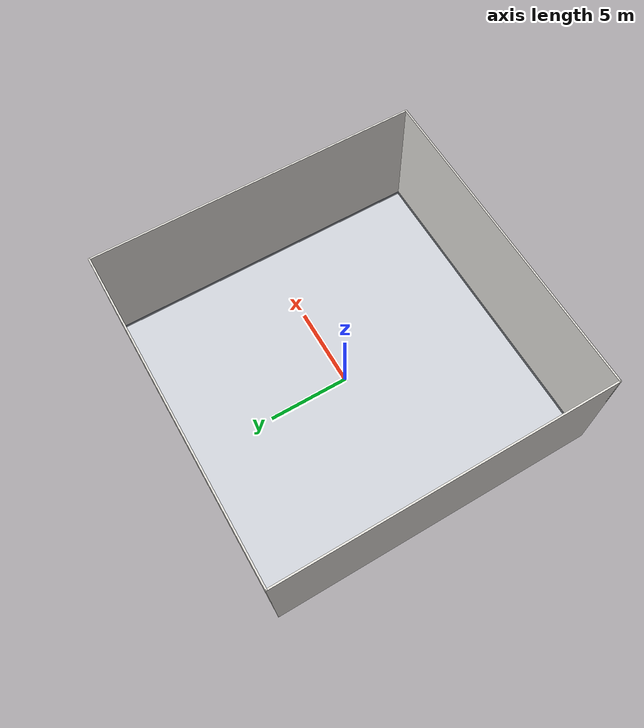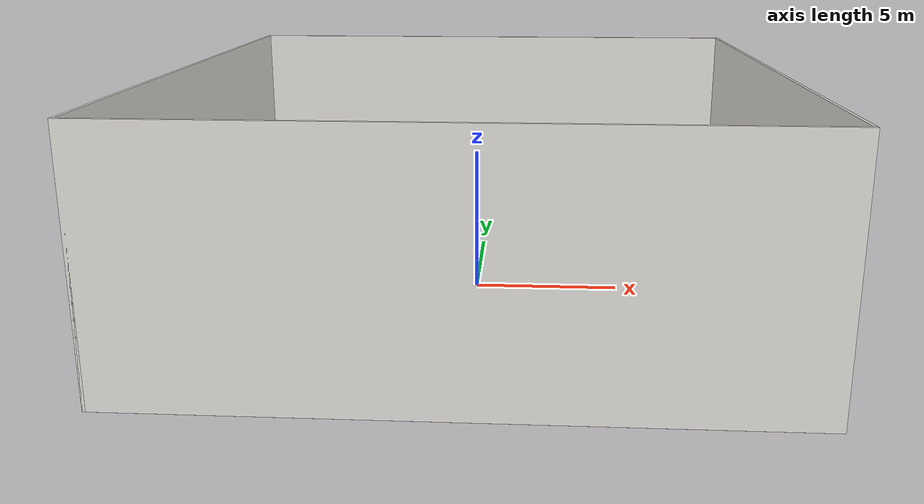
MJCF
<!-- 20 x 20 m room, 8 m ceiling, primitives and built-in textures only. Floor z = 0, +x east. -->
<mujoco model="px4_flight_room">
  <visual>
    <quality shadowsize="8192" offsamples="8"/>
    <map znear="0.05" zfar="60" shadowclip="0.5" shadowscale="0.7"/>
    <headlight ambient="0.40 0.40 0.43" diffuse="0.0 0.0 0.0" specular="0.0 0.0 0.0"/>
  </visual>

  <asset>
    <texture name="sky" type="skybox" builtin="gradient"
             rgb1="0.62 0.70 0.80" rgb2="0.86 0.90 0.94" width="256" height="256"/>
    <!-- texrepeat 20: one checker square is 1 m. -->
    <texture name="floor_tex" type="2d" builtin="checker"
             rgb1="0.88 0.89 0.91" rgb2="0.74 0.76 0.79" width="512" height="512"/>
    <material name="floor_mat" texture="floor_tex" texrepeat="20 20" specular="0.0" shininess="0.0"
              reflectance="0.0"/>
    <material name="wall_mat" rgba="0.90 0.89 0.87 1" specular="0.05" shininess="0.05"/>
    <material name="trim_mat" rgba="0.55 0.57 0.60 1" specular="0.1" shininess="0.1"/>
  </asset>

  <worldbody>
    <!-- Directional, so the floor is lit evenly; one shadow caster only. -->
    <light name="key"    directional="true" dir="-0.45 -0.35 -1" diffuse="0.42 0.42 0.41" specular="0 0 0" castshadow="true"/>
    <light name="fill_a" directional="true" dir=" 0.55 -0.25 -1" diffuse="0.16 0.16 0.17" specular="0 0 0" castshadow="false"/>
    <light name="fill_b" directional="true" dir=" 0.10  0.60 -1" diffuse="0.13 0.13 0.14" specular="0 0 0" castshadow="false"/>

    <geom name="floor" type="plane" size="10.0 10.0 0.05" material="floor_mat"
          friction="1.0 0.005 0.0001"/>
    <geom name="wall_north" type="box" pos=" 0.0  10.0 4.0" size="10.05 0.05 4.0" material="wall_mat"/>
    <geom name="wall_south" type="box" pos=" 0.0 -10.0 4.0" size="10.05 0.05 4.0" material="wall_mat"/>
    <geom name="wall_east"  type="box" pos=" 10.0  0.0 4.0" size="0.05 10.05 4.0" material="wall_mat"/>
    <geom name="wall_west"  type="box" pos="-10.0  0.0 4.0" size="0.05 10.05 4.0" material="wall_mat"/>
    <geom name="trim_north" type="box" pos=" 0.0  9.94 0.10" size="10.0 0.012 0.10" material="trim_mat" contype="0" conaffinity="0"/>
    <geom name="trim_south" type="box" pos=" 0.0 -9.94 0.10" size="10.0 0.012 0.10" material="trim_mat" contype="0" conaffinity="0"/>
    <geom name="trim_east"  type="box" pos=" 9.94  0.0 0.10" size="0.012 10.0 0.10" material="trim_mat" contype="0" conaffinity="0"/>
    <geom name="trim_west"  type="box" pos="-9.94  0.0 0.10" size="0.012 10.0 0.10" material="trim_mat" contype="0" conaffinity="0"/>
    <!-- Fixed camera for `roqsim render --camera room`; framing identical across configurations. -->
    <camera name="room" pos="9.0 -9.0 7.0" xyaxes="0.7071 0.7071 -0.0000 -0.3536 0.3536 0.8660"/>
  </worldbody>
</mujoco>
